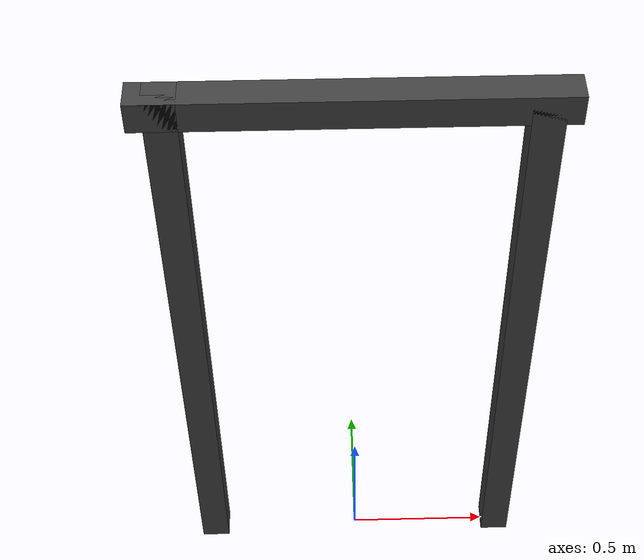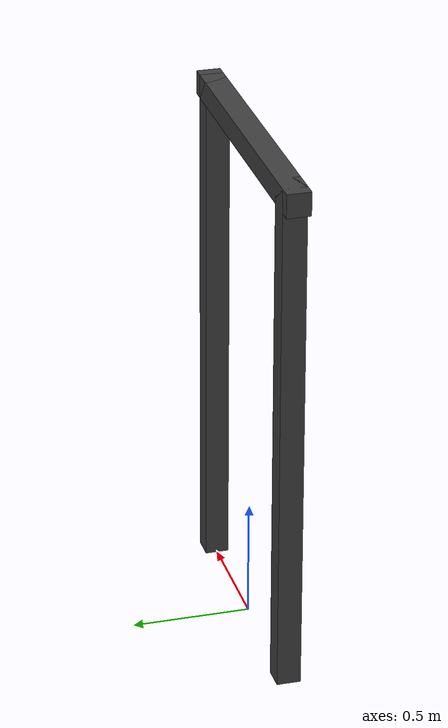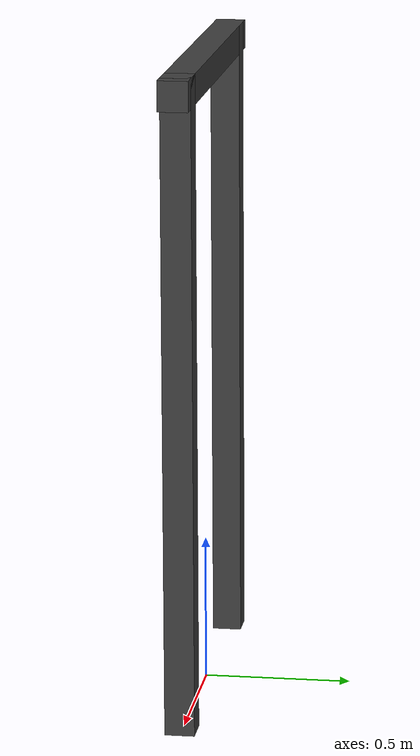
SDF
<sdf version="1.6">
  <!-- This compact model isolates frame geometry and hinge motion for tests that
       do not need the full corridor world. -->
  <model name="glass_door_frame">
    <static>false</static>

    <!-- FIXED PANEL FRAME -->
    <link name="fixed_frame">
      <pose>-0.55 0 1.1 0 0 0</pose>

      <collision name="collision">
        <geometry>
          <box><size>0.1 0.1 2.2</size></box>
        </geometry>
      </collision>

      <visual name="visual">
        <geometry>
          <box><size>0.1 0.1 2.2</size></box>
        </geometry>
        <material>
          <ambient>0.25 0.25 0.25 1</ambient>
        </material>
      </visual>
    </link>

    <!-- MOVING PANEL FRAME -->
    <link name="moving_frame">
      <pose>0.55 0 1.1 0 0 0</pose>

      <collision name="collision">
        <geometry>
          <box><size>0.1 0.1 2.2</size></box>
        </geometry>
      </collision>

      <visual name="visual">
        <geometry>
          <box><size>0.1 0.1 2.2</size></box>
        </geometry>
        <material>
          <ambient>0.25 0.25 0.25 1</ambient>
        </material>
      </visual>
    </link>

    <!-- TOP FRAME -->
    <link name="top_frame">
      <pose>0 0 2.15 0 0 0</pose>

      <collision name="collision">
        <geometry>
          <box><size>1.3 0.1 0.1</size></box>
        </geometry>
      </collision>

      <visual name="visual">
        <geometry>
          <box><size>1.3 0.1 0.1</size></box>
        </geometry>
        <material>
          <ambient>0.25 0.25 0.25 1</ambient>
        </material>
      </visual>
    </link>

    <!-- The moving upright rotates about world Z, matching a conventional door hinge. -->
    <!-- HINGE JOINT -->
    <joint name="door_hinge" type="revolute">
      <parent>fixed_frame</parent>
      <child>moving_frame</child>
      <axis>
        <xyz>0 0 1</xyz>
        <limit>
          <lower>0</lower>
          <upper>1.57</upper> <!-- 90 degrees -->
        </limit>
      </axis>
    </joint>

  </model>
</sdf>
